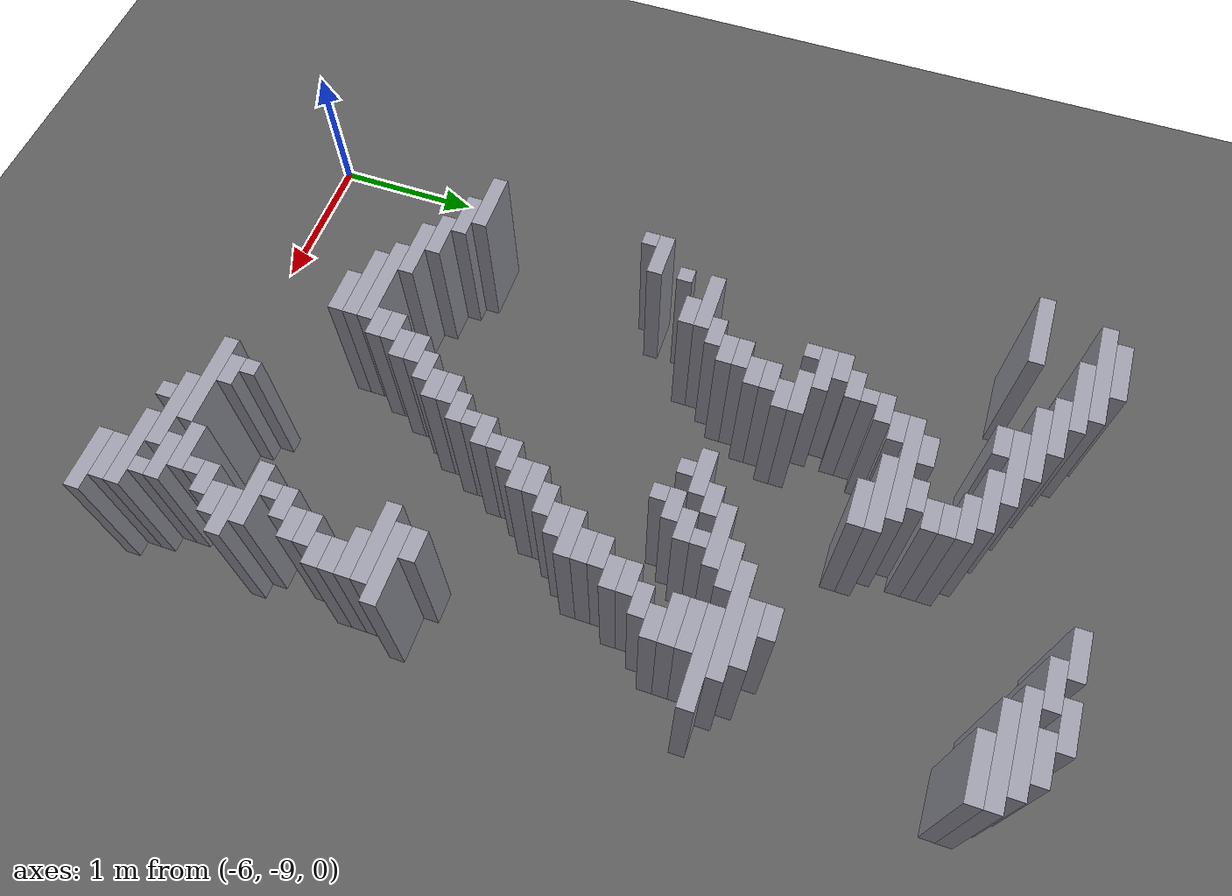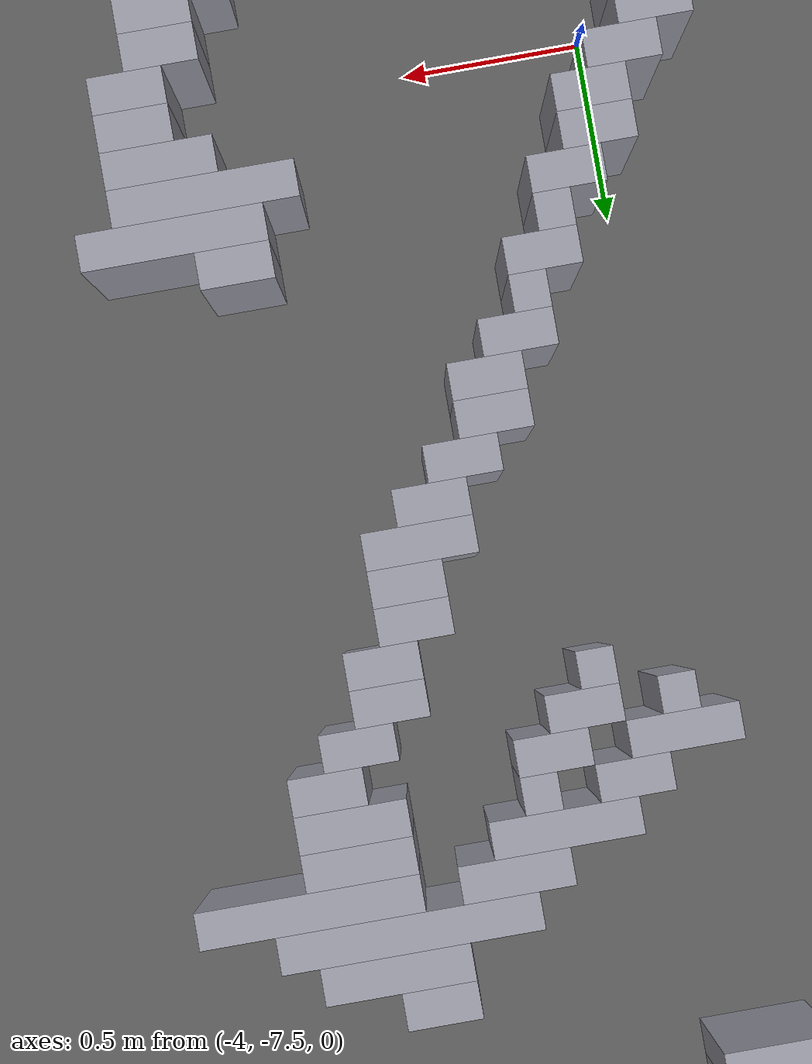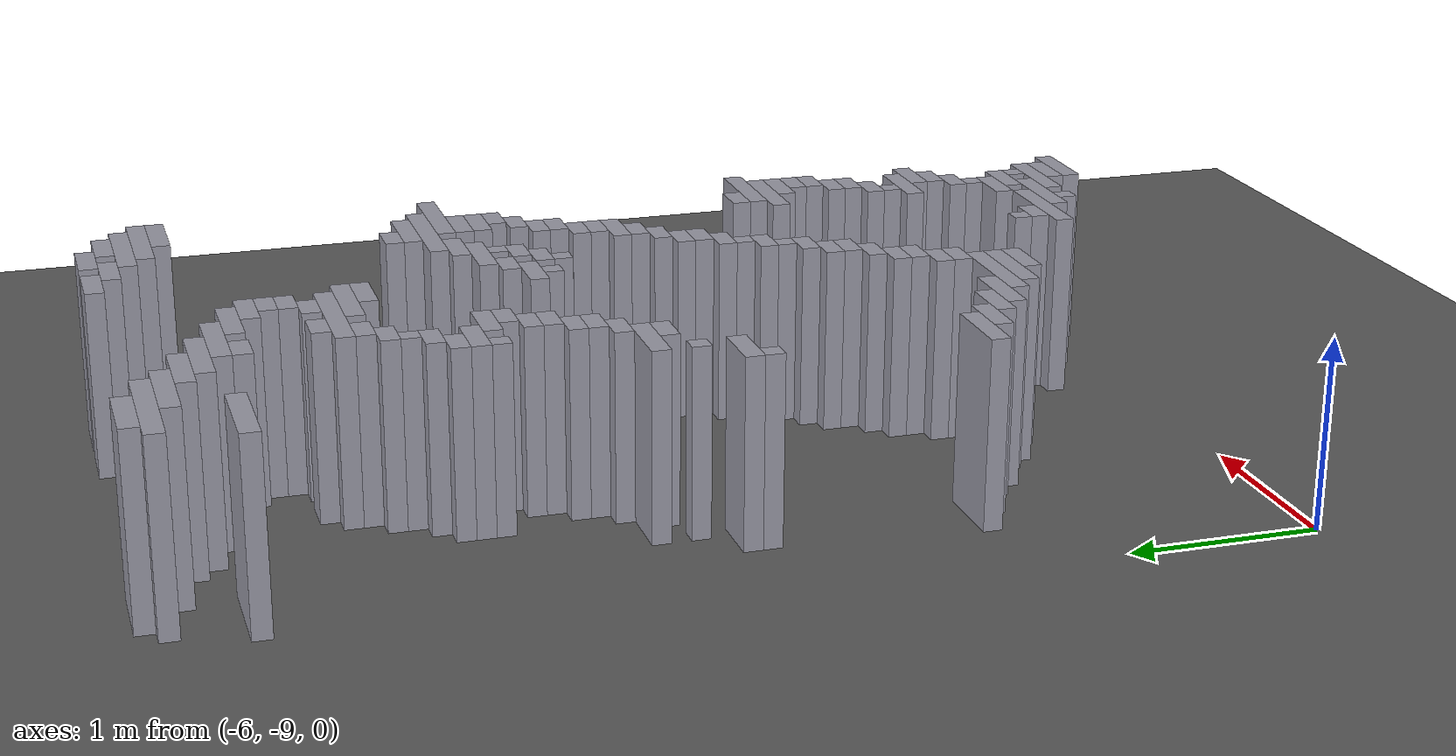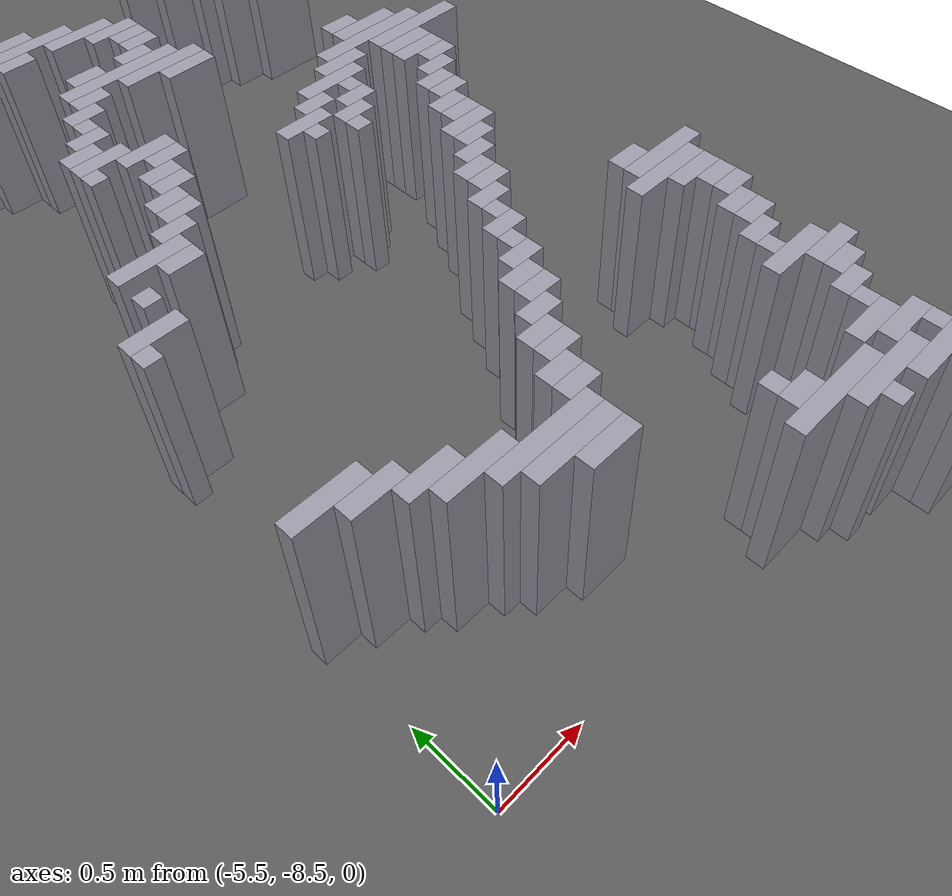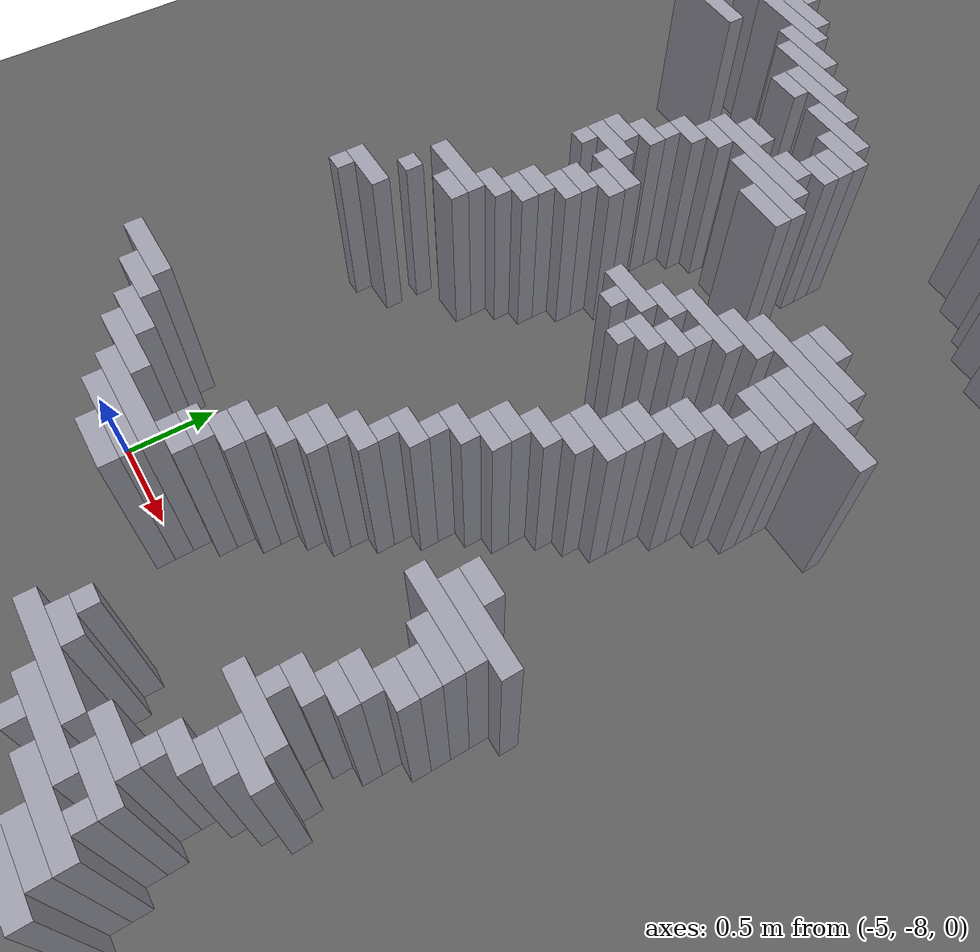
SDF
<sdf version="1.8">
 <world name="dimi">
  <model name="ground">
   <static>true</static>
   <link name="ground_link">
    <collision name="c"><geometry><plane><normal>0 0 1</normal><size>60 60</size></plane></geometry></collision>
    <visual name="v">
     <geometry><plane><normal>0 0 1</normal><size>60 60</size></plane></geometry>
     <material><ambient>0.3 0.3 0.3 1</ambient><diffuse>0.35 0.35 0.35 1</diffuse></material>
    </visual>
   </link>
  </model>
  <model name="walls">
   <static>true</static>
   <link name="wall_346">
    <pose>-5.3610 -3.3710 0.5000 0 0 0</pose>
    <collision name="c"><geometry><box><size>0.4000 0.1000 1.0000</size></box></geometry></collision>
    <visual name="v">
     <geometry><box><size>0.4000 0.1000 1.0000</size></box></geometry>
     <material><ambient>0.5 0.5 0.55 1</ambient><diffuse>0.6 0.6 0.65 1</diffuse></material>
    </visual>
   </link>
   <link name="wall_347">
    <pose>-3.5110 -3.3710 0.5000 0 0 0</pose>
    <collision name="c"><geometry><box><size>0.3000 0.1000 1.0000</size></box></geometry></collision>
    <visual name="v">
     <geometry><box><size>0.3000 0.1000 1.0000</size></box></geometry>
     <material><ambient>0.5 0.5 0.55 1</ambient><diffuse>0.6 0.6 0.65 1</diffuse></material>
    </visual>
   </link>
   <link name="wall_348">
    <pose>-3.1110 -3.3710 0.5000 0 0 0</pose>
    <collision name="c"><geometry><box><size>0.3000 0.1000 1.0000</size></box></geometry></collision>
    <visual name="v">
     <geometry><box><size>0.3000 0.1000 1.0000</size></box></geometry>
     <material><ambient>0.5 0.5 0.55 1</ambient><diffuse>0.6 0.6 0.65 1</diffuse></material>
    </visual>
   </link>
   <link name="wall_352">
    <pose>-5.3110 -3.4710 0.5000 0 0 0</pose>
    <collision name="c"><geometry><box><size>0.7000 0.1000 1.0000</size></box></geometry></collision>
    <visual name="v">
     <geometry><box><size>0.7000 0.1000 1.0000</size></box></geometry>
     <material><ambient>0.5 0.5 0.55 1</ambient><diffuse>0.6 0.6 0.65 1</diffuse></material>
    </visual>
   </link>
   <link name="wall_353">
    <pose>-3.3110 -3.4710 0.5000 0 0 0</pose>
    <collision name="c"><geometry><box><size>0.3000 0.1000 1.0000</size></box></geometry></collision>
    <visual name="v">
     <geometry><box><size>0.3000 0.1000 1.0000</size></box></geometry>
     <material><ambient>0.5 0.5 0.55 1</ambient><diffuse>0.6 0.6 0.65 1</diffuse></material>
    </visual>
   </link>
   <link name="wall_354">
    <pose>-2.9110 -3.4710 0.5000 0 0 0</pose>
    <collision name="c"><geometry><box><size>0.3000 0.1000 1.0000</size></box></geometry></collision>
    <visual name="v">
     <geometry><box><size>0.3000 0.1000 1.0000</size></box></geometry>
     <material><ambient>0.5 0.5 0.55 1</ambient><diffuse>0.6 0.6 0.65 1</diffuse></material>
    </visual>
   </link>
   <link name="wall_360">
    <pose>-5.1110 -3.5710 0.5000 0 0 0</pose>
    <collision name="c"><geometry><box><size>0.5000 0.1000 1.0000</size></box></geometry></collision>
    <visual name="v">
     <geometry><box><size>0.5000 0.1000 1.0000</size></box></geometry>
     <material><ambient>0.5 0.5 0.55 1</ambient><diffuse>0.6 0.6 0.65 1</diffuse></material>
    </visual>
   </link>
   <link name="wall_361">
    <pose>-2.9610 -3.5710 0.5000 0 0 0</pose>
    <collision name="c"><geometry><box><size>0.6000 0.1000 1.0000</size></box></geometry></collision>
    <visual name="v">
     <geometry><box><size>0.6000 0.1000 1.0000</size></box></geometry>
     <material><ambient>0.5 0.5 0.55 1</ambient><diffuse>0.6 0.6 0.65 1</diffuse></material>
    </visual>
   </link>
   <link name="wall_367">
    <pose>-4.8610 -3.6710 0.5000 0 0 0</pose>
    <collision name="c"><geometry><box><size>0.4000 0.1000 1.0000</size></box></geometry></collision>
    <visual name="v">
     <geometry><box><size>0.4000 0.1000 1.0000</size></box></geometry>
     <material><ambient>0.5 0.5 0.55 1</ambient><diffuse>0.6 0.6 0.65 1</diffuse></material>
    </visual>
   </link>
   <link name="wall_368">
    <pose>-2.8610 -3.6710 0.5000 0 0 0</pose>
    <collision name="c"><geometry><box><size>0.6000 0.1000 1.0000</size></box></geometry></collision>
    <visual name="v">
     <geometry><box><size>0.6000 0.1000 1.0000</size></box></geometry>
     <material><ambient>0.5 0.5 0.55 1</ambient><diffuse>0.6 0.6 0.65 1</diffuse></material>
    </visual>
   </link>
   <link name="wall_374">
    <pose>-4.7110 -3.7710 0.5000 0 0 0</pose>
    <collision name="c"><geometry><box><size>0.5000 0.1000 1.0000</size></box></geometry></collision>
    <visual name="v">
     <geometry><box><size>0.5000 0.1000 1.0000</size></box></geometry>
     <material><ambient>0.5 0.5 0.55 1</ambient><diffuse>0.6 0.6 0.65 1</diffuse></material>
    </visual>
   </link>
   <link name="wall_375">
    <pose>-2.7610 -3.7710 0.5000 0 0 0</pose>
    <collision name="c"><geometry><box><size>0.4000 0.1000 1.0000</size></box></geometry></collision>
    <visual name="v">
     <geometry><box><size>0.4000 0.1000 1.0000</size></box></geometry>
     <material><ambient>0.5 0.5 0.55 1</ambient><diffuse>0.6 0.6 0.65 1</diffuse></material>
    </visual>
   </link>
   <link name="wall_382">
    <pose>-5.5110 -3.8710 0.5000 0 0 0</pose>
    <collision name="c"><geometry><box><size>0.5000 0.1000 1.0000</size></box></geometry></collision>
    <visual name="v">
     <geometry><box><size>0.5000 0.1000 1.0000</size></box></geometry>
     <material><ambient>0.5 0.5 0.55 1</ambient><diffuse>0.6 0.6 0.65 1</diffuse></material>
    </visual>
   </link>
   <link name="wall_383">
    <pose>-4.5110 -3.8710 0.5000 0 0 0</pose>
    <collision name="c"><geometry><box><size>0.5000 0.1000 1.0000</size></box></geometry></collision>
    <visual name="v">
     <geometry><box><size>0.5000 0.1000 1.0000</size></box></geometry>
     <material><ambient>0.5 0.5 0.55 1</ambient><diffuse>0.6 0.6 0.65 1</diffuse></material>
    </visual>
   </link>
   <link name="wall_390">
    <pose>-4.6610 -3.9710 0.5000 0 0 0</pose>
    <collision name="c"><geometry><box><size>0.2000 0.1000 1.0000</size></box></geometry></collision>
    <visual name="v">
     <geometry><box><size>0.2000 0.1000 1.0000</size></box></geometry>
     <material><ambient>0.5 0.5 0.55 1</ambient><diffuse>0.6 0.6 0.65 1</diffuse></material>
    </visual>
   </link>
   <link name="wall_391">
    <pose>-4.2610 -3.9710 0.5000 0 0 0</pose>
    <collision name="c"><geometry><box><size>0.4000 0.1000 1.0000</size></box></geometry></collision>
    <visual name="v">
     <geometry><box><size>0.4000 0.1000 1.0000</size></box></geometry>
     <material><ambient>0.5 0.5 0.55 1</ambient><diffuse>0.6 0.6 0.65 1</diffuse></material>
    </visual>
   </link>
   <link name="wall_398">
    <pose>-4.1110 -4.0710 0.5000 0 0 0</pose>
    <collision name="c"><geometry><box><size>0.3000 0.1000 1.0000</size></box></geometry></collision>
    <visual name="v">
     <geometry><box><size>0.3000 0.1000 1.0000</size></box></geometry>
     <material><ambient>0.5 0.5 0.55 1</ambient><diffuse>0.6 0.6 0.65 1</diffuse></material>
    </visual>
   </link>
   <link name="wall_404">
    <pose>-4.0610 -4.1710 0.5000 0 0 0</pose>
    <collision name="c"><geometry><box><size>0.2000 0.1000 1.0000</size></box></geometry></collision>
    <visual name="v">
     <geometry><box><size>0.2000 0.1000 1.0000</size></box></geometry>
     <material><ambient>0.5 0.5 0.55 1</ambient><diffuse>0.6 0.6 0.65 1</diffuse></material>
    </visual>
   </link>
   <link name="wall_412">
    <pose>-4.0610 -4.2710 0.5000 0 0 0</pose>
    <collision name="c"><geometry><box><size>0.2000 0.1000 1.0000</size></box></geometry></collision>
    <visual name="v">
     <geometry><box><size>0.2000 0.1000 1.0000</size></box></geometry>
     <material><ambient>0.5 0.5 0.55 1</ambient><diffuse>0.6 0.6 0.65 1</diffuse></material>
    </visual>
   </link>
   <link name="wall_419">
    <pose>-4.4610 -4.3710 0.5000 0 0 0</pose>
    <collision name="c"><geometry><box><size>0.2000 0.1000 1.0000</size></box></geometry></collision>
    <visual name="v">
     <geometry><box><size>0.2000 0.1000 1.0000</size></box></geometry>
     <material><ambient>0.5 0.5 0.55 1</ambient><diffuse>0.6 0.6 0.65 1</diffuse></material>
    </visual>
   </link>
   <link name="wall_420">
    <pose>-4.1610 -4.3710 0.5000 0 0 0</pose>
    <collision name="c"><geometry><box><size>0.2000 0.1000 1.0000</size></box></geometry></collision>
    <visual name="v">
     <geometry><box><size>0.2000 0.1000 1.0000</size></box></geometry>
     <material><ambient>0.5 0.5 0.55 1</ambient><diffuse>0.6 0.6 0.65 1</diffuse></material>
    </visual>
   </link>
   <link name="wall_426">
    <pose>-4.3110 -4.4710 0.5000 0 0 0</pose>
    <collision name="c"><geometry><box><size>0.7000 0.1000 1.0000</size></box></geometry></collision>
    <visual name="v">
     <geometry><box><size>0.7000 0.1000 1.0000</size></box></geometry>
     <material><ambient>0.5 0.5 0.55 1</ambient><diffuse>0.6 0.6 0.65 1</diffuse></material>
    </visual>
   </link>
   <link name="wall_433">
    <pose>-4.5610 -4.5710 0.5000 0 0 0</pose>
    <collision name="c"><geometry><box><size>0.2000 0.1000 1.0000</size></box></geometry></collision>
    <visual name="v">
     <geometry><box><size>0.2000 0.1000 1.0000</size></box></geometry>
     <material><ambient>0.5 0.5 0.55 1</ambient><diffuse>0.6 0.6 0.65 1</diffuse></material>
    </visual>
   </link>
   <link name="wall_434">
    <pose>-4.1110 -4.5710 0.5000 0 0 0</pose>
    <collision name="c"><geometry><box><size>0.5000 0.1000 1.0000</size></box></geometry></collision>
    <visual name="v">
     <geometry><box><size>0.5000 0.1000 1.0000</size></box></geometry>
     <material><ambient>0.5 0.5 0.55 1</ambient><diffuse>0.6 0.6 0.65 1</diffuse></material>
    </visual>
   </link>
   <link name="wall_440">
    <pose>-4.6610 -4.6710 0.5000 0 0 0</pose>
    <collision name="c"><geometry><box><size>0.2000 0.1000 1.0000</size></box></geometry></collision>
    <visual name="v">
     <geometry><box><size>0.2000 0.1000 1.0000</size></box></geometry>
     <material><ambient>0.5 0.5 0.55 1</ambient><diffuse>0.6 0.6 0.65 1</diffuse></material>
    </visual>
   </link>
   <link name="wall_441">
    <pose>-4.0110 -4.6710 0.5000 0 0 0</pose>
    <collision name="c"><geometry><box><size>0.3000 0.1000 1.0000</size></box></geometry></collision>
    <visual name="v">
     <geometry><box><size>0.3000 0.1000 1.0000</size></box></geometry>
     <material><ambient>0.5 0.5 0.55 1</ambient><diffuse>0.6 0.6 0.65 1</diffuse></material>
    </visual>
   </link>
   <link name="wall_446">
    <pose>-4.7110 -4.7710 0.5000 0 0 0</pose>
    <collision name="c"><geometry><box><size>0.1000 0.1000 1.0000</size></box></geometry></collision>
    <visual name="v">
     <geometry><box><size>0.1000 0.1000 1.0000</size></box></geometry>
     <material><ambient>0.5 0.5 0.55 1</ambient><diffuse>0.6 0.6 0.65 1</diffuse></material>
    </visual>
   </link>
   <link name="wall_451">
    <pose>-4.7610 -4.8710 0.5000 0 0 0</pose>
    <collision name="c"><geometry><box><size>0.2000 0.1000 1.0000</size></box></geometry></collision>
    <visual name="v">
     <geometry><box><size>0.2000 0.1000 1.0000</size></box></geometry>
     <material><ambient>0.5 0.5 0.55 1</ambient><diffuse>0.6 0.6 0.65 1</diffuse></material>
    </visual>
   </link>
   <link name="wall_456">
    <pose>-4.8610 -4.9710 0.5000 0 0 0</pose>
    <collision name="c"><geometry><box><size>0.2000 0.1000 1.0000</size></box></geometry></collision>
    <visual name="v">
     <geometry><box><size>0.2000 0.1000 1.0000</size></box></geometry>
     <material><ambient>0.5 0.5 0.55 1</ambient><diffuse>0.6 0.6 0.65 1</diffuse></material>
    </visual>
   </link>
   <link name="wall_457">
    <pose>-3.1610 -4.9710 0.5000 0 0 0</pose>
    <collision name="c"><geometry><box><size>0.2000 0.1000 1.0000</size></box></geometry></collision>
    <visual name="v">
     <geometry><box><size>0.2000 0.1000 1.0000</size></box></geometry>
     <material><ambient>0.5 0.5 0.55 1</ambient><diffuse>0.6 0.6 0.65 1</diffuse></material>
    </visual>
   </link>
   <link name="wall_461">
    <pose>-4.8110 -5.0710 0.5000 0 0 0</pose>
    <collision name="c"><geometry><box><size>0.3000 0.1000 1.0000</size></box></geometry></collision>
    <visual name="v">
     <geometry><box><size>0.3000 0.1000 1.0000</size></box></geometry>
     <material><ambient>0.5 0.5 0.55 1</ambient><diffuse>0.6 0.6 0.65 1</diffuse></material>
    </visual>
   </link>
   <link name="wall_462">
    <pose>-3.0610 -5.0710 0.5000 0 0 0</pose>
    <collision name="c"><geometry><box><size>0.4000 0.1000 1.0000</size></box></geometry></collision>
    <visual name="v">
     <geometry><box><size>0.4000 0.1000 1.0000</size></box></geometry>
     <material><ambient>0.5 0.5 0.55 1</ambient><diffuse>0.6 0.6 0.65 1</diffuse></material>
    </visual>
   </link>
   <link name="wall_467">
    <pose>-4.9110 -5.1710 0.5000 0 0 0</pose>
    <collision name="c"><geometry><box><size>0.1000 0.1000 1.0000</size></box></geometry></collision>
    <visual name="v">
     <geometry><box><size>0.1000 0.1000 1.0000</size></box></geometry>
     <material><ambient>0.5 0.5 0.55 1</ambient><diffuse>0.6 0.6 0.65 1</diffuse></material>
    </visual>
   </link>
   <link name="wall_468">
    <pose>-4.6110 -5.1710 0.5000 0 0 0</pose>
    <collision name="c"><geometry><box><size>0.3000 0.1000 1.0000</size></box></geometry></collision>
    <visual name="v">
     <geometry><box><size>0.3000 0.1000 1.0000</size></box></geometry>
     <material><ambient>0.5 0.5 0.55 1</ambient><diffuse>0.6 0.6 0.65 1</diffuse></material>
    </visual>
   </link>
   <link name="wall_469">
    <pose>-3.1110 -5.1710 0.5000 0 0 0</pose>
    <collision name="c"><geometry><box><size>0.7000 0.1000 1.0000</size></box></geometry></collision>
    <visual name="v">
     <geometry><box><size>0.7000 0.1000 1.0000</size></box></geometry>
     <material><ambient>0.5 0.5 0.55 1</ambient><diffuse>0.6 0.6 0.65 1</diffuse></material>
    </visual>
   </link>
   <link name="wall_473">
    <pose>-4.5610 -5.2710 0.5000 0 0 0</pose>
    <collision name="c"><geometry><box><size>0.2000 0.1000 1.0000</size></box></geometry></collision>
    <visual name="v">
     <geometry><box><size>0.2000 0.1000 1.0000</size></box></geometry>
     <material><ambient>0.5 0.5 0.55 1</ambient><diffuse>0.6 0.6 0.65 1</diffuse></material>
    </visual>
   </link>
   <link name="wall_474">
    <pose>-3.4110 -5.2710 0.5000 0 0 0</pose>
    <collision name="c"><geometry><box><size>0.3000 0.1000 1.0000</size></box></geometry></collision>
    <visual name="v">
     <geometry><box><size>0.3000 0.1000 1.0000</size></box></geometry>
     <material><ambient>0.5 0.5 0.55 1</ambient><diffuse>0.6 0.6 0.65 1</diffuse></material>
    </visual>
   </link>
   <link name="wall_475">
    <pose>-2.8610 -5.2710 0.5000 0 0 0</pose>
    <collision name="c"><geometry><box><size>0.6000 0.1000 1.0000</size></box></geometry></collision>
    <visual name="v">
     <geometry><box><size>0.6000 0.1000 1.0000</size></box></geometry>
     <material><ambient>0.5 0.5 0.55 1</ambient><diffuse>0.6 0.6 0.65 1</diffuse></material>
    </visual>
   </link>
   <link name="wall_481">
    <pose>-4.6610 -5.3710 0.5000 0 0 0</pose>
    <collision name="c"><geometry><box><size>0.2000 0.1000 1.0000</size></box></geometry></collision>
    <visual name="v">
     <geometry><box><size>0.2000 0.1000 1.0000</size></box></geometry>
     <material><ambient>0.5 0.5 0.55 1</ambient><diffuse>0.6 0.6 0.65 1</diffuse></material>
    </visual>
   </link>
   <link name="wall_482">
    <pose>-3.5610 -5.3710 0.5000 0 0 0</pose>
    <collision name="c"><geometry><box><size>0.4000 0.1000 1.0000</size></box></geometry></collision>
    <visual name="v">
     <geometry><box><size>0.4000 0.1000 1.0000</size></box></geometry>
     <material><ambient>0.5 0.5 0.55 1</ambient><diffuse>0.6 0.6 0.65 1</diffuse></material>
    </visual>
   </link>
   <link name="wall_483">
    <pose>-3.0110 -5.3710 0.5000 0 0 0</pose>
    <collision name="c"><geometry><box><size>0.3000 0.1000 1.0000</size></box></geometry></collision>
    <visual name="v">
     <geometry><box><size>0.3000 0.1000 1.0000</size></box></geometry>
     <material><ambient>0.5 0.5 0.55 1</ambient><diffuse>0.6 0.6 0.65 1</diffuse></material>
    </visual>
   </link>
   <link name="wall_489">
    <pose>-4.6610 -5.4710 0.5000 0 0 0</pose>
    <collision name="c"><geometry><box><size>0.2000 0.1000 1.0000</size></box></geometry></collision>
    <visual name="v">
     <geometry><box><size>0.2000 0.1000 1.0000</size></box></geometry>
     <material><ambient>0.5 0.5 0.55 1</ambient><diffuse>0.6 0.6 0.65 1</diffuse></material>
    </visual>
   </link>
   <link name="wall_490">
    <pose>-3.7610 -5.4710 0.5000 0 0 0</pose>
    <collision name="c"><geometry><box><size>0.2000 0.1000 1.0000</size></box></geometry></collision>
    <visual name="v">
     <geometry><box><size>0.2000 0.1000 1.0000</size></box></geometry>
     <material><ambient>0.5 0.5 0.55 1</ambient><diffuse>0.6 0.6 0.65 1</diffuse></material>
    </visual>
   </link>
   <link name="wall_491">
    <pose>-3.5110 -5.4710 0.5000 0 0 0</pose>
    <collision name="c"><geometry><box><size>0.1000 0.1000 1.0000</size></box></geometry></collision>
    <visual name="v">
     <geometry><box><size>0.1000 0.1000 1.0000</size></box></geometry>
     <material><ambient>0.5 0.5 0.55 1</ambient><diffuse>0.6 0.6 0.65 1</diffuse></material>
    </visual>
   </link>
   <link name="wall_492">
    <pose>-3.0110 -5.4710 0.5000 0 0 0</pose>
    <collision name="c"><geometry><box><size>0.3000 0.1000 1.0000</size></box></geometry></collision>
    <visual name="v">
     <geometry><box><size>0.3000 0.1000 1.0000</size></box></geometry>
     <material><ambient>0.5 0.5 0.55 1</ambient><diffuse>0.6 0.6 0.65 1</diffuse></material>
    </visual>
   </link>
   <link name="wall_497">
    <pose>-4.7610 -5.5710 0.5000 0 0 0</pose>
    <collision name="c"><geometry><box><size>0.2000 0.1000 1.0000</size></box></geometry></collision>
    <visual name="v">
     <geometry><box><size>0.2000 0.1000 1.0000</size></box></geometry>
     <material><ambient>0.5 0.5 0.55 1</ambient><diffuse>0.6 0.6 0.65 1</diffuse></material>
    </visual>
   </link>
   <link name="wall_498">
    <pose>-3.9110 -5.5710 0.5000 0 0 0</pose>
    <collision name="c"><geometry><box><size>0.3000 0.1000 1.0000</size></box></geometry></collision>
    <visual name="v">
     <geometry><box><size>0.3000 0.1000 1.0000</size></box></geometry>
     <material><ambient>0.5 0.5 0.55 1</ambient><diffuse>0.6 0.6 0.65 1</diffuse></material>
    </visual>
   </link>
   <link name="wall_499">
    <pose>-3.5610 -5.5710 0.5000 0 0 0</pose>
    <collision name="c"><geometry><box><size>0.2000 0.1000 1.0000</size></box></geometry></collision>
    <visual name="v">
     <geometry><box><size>0.2000 0.1000 1.0000</size></box></geometry>
     <material><ambient>0.5 0.5 0.55 1</ambient><diffuse>0.6 0.6 0.65 1</diffuse></material>
    </visual>
   </link>
   <link name="wall_500">
    <pose>-2.9610 -5.5710 0.5000 0 0 0</pose>
    <collision name="c"><geometry><box><size>0.2000 0.1000 1.0000</size></box></geometry></collision>
    <visual name="v">
     <geometry><box><size>0.2000 0.1000 1.0000</size></box></geometry>
     <material><ambient>0.5 0.5 0.55 1</ambient><diffuse>0.6 0.6 0.65 1</diffuse></material>
    </visual>
   </link>
   <link name="wall_506">
    <pose>-4.7610 -5.6710 0.5000 0 0 0</pose>
    <collision name="c"><geometry><box><size>0.2000 0.1000 1.0000</size></box></geometry></collision>
    <visual name="v">
     <geometry><box><size>0.2000 0.1000 1.0000</size></box></geometry>
     <material><ambient>0.5 0.5 0.55 1</ambient><diffuse>0.6 0.6 0.65 1</diffuse></material>
    </visual>
   </link>
   <link name="wall_507">
    <pose>-3.9110 -5.6710 0.5000 0 0 0</pose>
    <collision name="c"><geometry><box><size>0.1000 0.1000 1.0000</size></box></geometry></collision>
    <visual name="v">
     <geometry><box><size>0.1000 0.1000 1.0000</size></box></geometry>
     <material><ambient>0.5 0.5 0.55 1</ambient><diffuse>0.6 0.6 0.65 1</diffuse></material>
    </visual>
   </link>
   <link name="wall_508">
    <pose>-3.6610 -5.6710 0.5000 0 0 0</pose>
    <collision name="c"><geometry><box><size>0.2000 0.1000 1.0000</size></box></geometry></collision>
    <visual name="v">
     <geometry><box><size>0.2000 0.1000 1.0000</size></box></geometry>
     <material><ambient>0.5 0.5 0.55 1</ambient><diffuse>0.6 0.6 0.65 1</diffuse></material>
    </visual>
   </link>
   <link name="wall_509">
    <pose>-3.0610 -5.6710 0.5000 0 0 0</pose>
    <collision name="c"><geometry><box><size>0.2000 0.1000 1.0000</size></box></geometry></collision>
    <visual name="v">
     <geometry><box><size>0.2000 0.1000 1.0000</size></box></geometry>
     <material><ambient>0.5 0.5 0.55 1</ambient><diffuse>0.6 0.6 0.65 1</diffuse></material>
    </visual>
   </link>
   <link name="wall_515">
    <pose>-4.8610 -5.7710 0.5000 0 0 0</pose>
    <collision name="c"><geometry><box><size>0.2000 0.1000 1.0000</size></box></geometry></collision>
    <visual name="v">
     <geometry><box><size>0.2000 0.1000 1.0000</size></box></geometry>
     <material><ambient>0.5 0.5 0.55 1</ambient><diffuse>0.6 0.6 0.65 1</diffuse></material>
    </visual>
   </link>
   <link name="wall_516">
    <pose>-3.7110 -5.7710 0.5000 0 0 0</pose>
    <collision name="c"><geometry><box><size>0.1000 0.1000 1.0000</size></box></geometry></collision>
    <visual name="v">
     <geometry><box><size>0.1000 0.1000 1.0000</size></box></geometry>
     <material><ambient>0.5 0.5 0.55 1</ambient><diffuse>0.6 0.6 0.65 1</diffuse></material>
    </visual>
   </link>
   <link name="wall_517">
    <pose>-3.1610 -5.7710 0.5000 0 0 0</pose>
    <collision name="c"><geometry><box><size>0.2000 0.1000 1.0000</size></box></geometry></collision>
    <visual name="v">
     <geometry><box><size>0.2000 0.1000 1.0000</size></box></geometry>
     <material><ambient>0.5 0.5 0.55 1</ambient><diffuse>0.6 0.6 0.65 1</diffuse></material>
    </visual>
   </link>
   <link name="wall_524">
    <pose>-5.0610 -5.8710 0.5000 0 0 0</pose>
    <collision name="c"><geometry><box><size>0.4000 0.1000 1.0000</size></box></geometry></collision>
    <visual name="v">
     <geometry><box><size>0.4000 0.1000 1.0000</size></box></geometry>
     <material><ambient>0.5 0.5 0.55 1</ambient><diffuse>0.6 0.6 0.65 1</diffuse></material>
    </visual>
   </link>
   <link name="wall_525">
    <pose>-3.1610 -5.8710 0.5000 0 0 0</pose>
    <collision name="c"><geometry><box><size>0.2000 0.1000 1.0000</size></box></geometry></collision>
    <visual name="v">
     <geometry><box><size>0.2000 0.1000 1.0000</size></box></geometry>
     <material><ambient>0.5 0.5 0.55 1</ambient><diffuse>0.6 0.6 0.65 1</diffuse></material>
    </visual>
   </link>
   <link name="wall_532">
    <pose>-4.9610 -5.9710 0.5000 0 0 0</pose>
    <collision name="c"><geometry><box><size>0.2000 0.1000 1.0000</size></box></geometry></collision>
    <visual name="v">
     <geometry><box><size>0.2000 0.1000 1.0000</size></box></geometry>
     <material><ambient>0.5 0.5 0.55 1</ambient><diffuse>0.6 0.6 0.65 1</diffuse></material>
    </visual>
   </link>
   <link name="wall_533">
    <pose>-3.2610 -5.9710 0.5000 0 0 0</pose>
    <collision name="c"><geometry><box><size>0.2000 0.1000 1.0000</size></box></geometry></collision>
    <visual name="v">
     <geometry><box><size>0.2000 0.1000 1.0000</size></box></geometry>
     <material><ambient>0.5 0.5 0.55 1</ambient><diffuse>0.6 0.6 0.65 1</diffuse></material>
    </visual>
   </link>
   <link name="wall_538">
    <pose>-5.2110 -6.0710 0.5000 0 0 0</pose>
    <collision name="c"><geometry><box><size>0.1000 0.1000 1.0000</size></box></geometry></collision>
    <visual name="v">
     <geometry><box><size>0.1000 0.1000 1.0000</size></box></geometry>
     <material><ambient>0.5 0.5 0.55 1</ambient><diffuse>0.6 0.6 0.65 1</diffuse></material>
    </visual>
   </link>
   <link name="wall_539">
    <pose>-3.2610 -6.0710 0.5000 0 0 0</pose>
    <collision name="c"><geometry><box><size>0.2000 0.1000 1.0000</size></box></geometry></collision>
    <visual name="v">
     <geometry><box><size>0.2000 0.1000 1.0000</size></box></geometry>
     <material><ambient>0.5 0.5 0.55 1</ambient><diffuse>0.6 0.6 0.65 1</diffuse></material>
    </visual>
   </link>
   <link name="wall_548">
    <pose>-3.3110 -6.1710 0.5000 0 0 0</pose>
    <collision name="c"><geometry><box><size>0.3000 0.1000 1.0000</size></box></geometry></collision>
    <visual name="v">
     <geometry><box><size>0.3000 0.1000 1.0000</size></box></geometry>
     <material><ambient>0.5 0.5 0.55 1</ambient><diffuse>0.6 0.6 0.65 1</diffuse></material>
    </visual>
   </link>
   <link name="wall_555">
    <pose>-5.3110 -6.2710 0.5000 0 0 0</pose>
    <collision name="c"><geometry><box><size>0.3000 0.1000 1.0000</size></box></geometry></collision>
    <visual name="v">
     <geometry><box><size>0.3000 0.1000 1.0000</size></box></geometry>
     <material><ambient>0.5 0.5 0.55 1</ambient><diffuse>0.6 0.6 0.65 1</diffuse></material>
    </visual>
   </link>
   <link name="wall_556">
    <pose>-3.3610 -6.2710 0.5000 0 0 0</pose>
    <collision name="c"><geometry><box><size>0.2000 0.1000 1.0000</size></box></geometry></collision>
    <visual name="v">
     <geometry><box><size>0.2000 0.1000 1.0000</size></box></geometry>
     <material><ambient>0.5 0.5 0.55 1</ambient><diffuse>0.6 0.6 0.65 1</diffuse></material>
    </visual>
   </link>
   <link name="wall_562">
    <pose>-5.4110 -6.3710 0.5000 0 0 0</pose>
    <collision name="c"><geometry><box><size>0.1000 0.1000 1.0000</size></box></geometry></collision>
    <visual name="v">
     <geometry><box><size>0.1000 0.1000 1.0000</size></box></geometry>
     <material><ambient>0.5 0.5 0.55 1</ambient><diffuse>0.6 0.6 0.65 1</diffuse></material>
    </visual>
   </link>
   <link name="wall_563">
    <pose>-3.4610 -6.3710 0.5000 0 0 0</pose>
    <collision name="c"><geometry><box><size>0.2000 0.1000 1.0000</size></box></geometry></collision>
    <visual name="v">
     <geometry><box><size>0.2000 0.1000 1.0000</size></box></geometry>
     <material><ambient>0.5 0.5 0.55 1</ambient><diffuse>0.6 0.6 0.65 1</diffuse></material>
    </visual>
   </link>
   <link name="wall_569">
    <pose>-3.5610 -6.4710 0.5000 0 0 0</pose>
    <collision name="c"><geometry><box><size>0.2000 0.1000 1.0000</size></box></geometry></collision>
    <visual name="v">
     <geometry><box><size>0.2000 0.1000 1.0000</size></box></geometry>
     <material><ambient>0.5 0.5 0.55 1</ambient><diffuse>0.6 0.6 0.65 1</diffuse></material>
    </visual>
   </link>
   <link name="wall_576">
    <pose>-3.5610 -6.5710 0.5000 0 0 0</pose>
    <collision name="c"><geometry><box><size>0.2000 0.1000 1.0000</size></box></geometry></collision>
    <visual name="v">
     <geometry><box><size>0.2000 0.1000 1.0000</size></box></geometry>
     <material><ambient>0.5 0.5 0.55 1</ambient><diffuse>0.6 0.6 0.65 1</diffuse></material>
    </visual>
   </link>
   <link name="wall_583">
    <pose>-3.6610 -6.6710 0.5000 0 0 0</pose>
    <collision name="c"><geometry><box><size>0.2000 0.1000 1.0000</size></box></geometry></collision>
    <visual name="v">
     <geometry><box><size>0.2000 0.1000 1.0000</size></box></geometry>
     <material><ambient>0.5 0.5 0.55 1</ambient><diffuse>0.6 0.6 0.65 1</diffuse></material>
    </visual>
   </link>
   <link name="wall_590">
    <pose>-3.7110 -6.7710 0.5000 0 0 0</pose>
    <collision name="c"><geometry><box><size>0.1000 0.1000 1.0000</size></box></geometry></collision>
    <visual name="v">
     <geometry><box><size>0.1000 0.1000 1.0000</size></box></geometry>
     <material><ambient>0.5 0.5 0.55 1</ambient><diffuse>0.6 0.6 0.65 1</diffuse></material>
    </visual>
   </link>
   <link name="wall_597">
    <pose>-3.7610 -6.8710 0.5000 0 0 0</pose>
    <collision name="c"><geometry><box><size>0.2000 0.1000 1.0000</size></box></geometry></collision>
    <visual name="v">
     <geometry><box><size>0.2000 0.1000 1.0000</size></box></geometry>
     <material><ambient>0.5 0.5 0.55 1</ambient><diffuse>0.6 0.6 0.65 1</diffuse></material>
    </visual>
   </link>
   <link name="wall_604">
    <pose>-3.8110 -6.9710 0.5000 0 0 0</pose>
    <collision name="c"><geometry><box><size>0.1000 0.1000 1.0000</size></box></geometry></collision>
    <visual name="v">
     <geometry><box><size>0.1000 0.1000 1.0000</size></box></geometry>
     <material><ambient>0.5 0.5 0.55 1</ambient><diffuse>0.6 0.6 0.65 1</diffuse></material>
    </visual>
   </link>
   <link name="wall_605">
    <pose>-2.9610 -6.9710 0.5000 0 0 0</pose>
    <collision name="c"><geometry><box><size>0.2000 0.1000 1.0000</size></box></geometry></collision>
    <visual name="v">
     <geometry><box><size>0.2000 0.1000 1.0000</size></box></geometry>
     <material><ambient>0.5 0.5 0.55 1</ambient><diffuse>0.6 0.6 0.65 1</diffuse></material>
    </visual>
   </link>
   <link name="wall_610">
    <pose>-3.8610 -7.0710 0.5000 0 0 0</pose>
    <collision name="c"><geometry><box><size>0.2000 0.1000 1.0000</size></box></geometry></collision>
    <visual name="v">
     <geometry><box><size>0.2000 0.1000 1.0000</size></box></geometry>
     <material><ambient>0.5 0.5 0.55 1</ambient><diffuse>0.6 0.6 0.65 1</diffuse></material>
    </visual>
   </link>
   <link name="wall_611">
    <pose>-2.8110 -7.0710 0.5000 0 0 0</pose>
    <collision name="c"><geometry><box><size>0.5000 0.1000 1.0000</size></box></geometry></collision>
    <visual name="v">
     <geometry><box><size>0.5000 0.1000 1.0000</size></box></geometry>
     <material><ambient>0.5 0.5 0.55 1</ambient><diffuse>0.6 0.6 0.65 1</diffuse></material>
    </visual>
   </link>
   <link name="wall_615">
    <pose>-3.9610 -7.1710 0.5000 0 0 0</pose>
    <collision name="c"><geometry><box><size>0.2000 0.1000 1.0000</size></box></geometry></collision>
    <visual name="v">
     <geometry><box><size>0.2000 0.1000 1.0000</size></box></geometry>
     <material><ambient>0.5 0.5 0.55 1</ambient><diffuse>0.6 0.6 0.65 1</diffuse></material>
    </visual>
   </link>
   <link name="wall_616">
    <pose>-2.9110 -7.1710 0.5000 0 0 0</pose>
    <collision name="c"><geometry><box><size>0.5000 0.1000 1.0000</size></box></geometry></collision>
    <visual name="v">
     <geometry><box><size>0.5000 0.1000 1.0000</size></box></geometry>
     <material><ambient>0.5 0.5 0.55 1</ambient><diffuse>0.6 0.6 0.65 1</diffuse></material>
    </visual>
   </link>
   <link name="wall_621">
    <pose>-3.9610 -7.2710 0.5000 0 0 0</pose>
    <collision name="c"><geometry><box><size>0.2000 0.1000 1.0000</size></box></geometry></collision>
    <visual name="v">
     <geometry><box><size>0.2000 0.1000 1.0000</size></box></geometry>
     <material><ambient>0.5 0.5 0.55 1</ambient><diffuse>0.6 0.6 0.65 1</diffuse></material>
    </visual>
   </link>
   <link name="wall_622">
    <pose>-2.8110 -7.2710 0.5000 0 0 0</pose>
    <collision name="c"><geometry><box><size>0.3000 0.1000 1.0000</size></box></geometry></collision>
    <visual name="v">
     <geometry><box><size>0.3000 0.1000 1.0000</size></box></geometry>
     <material><ambient>0.5 0.5 0.55 1</ambient><diffuse>0.6 0.6 0.65 1</diffuse></material>
    </visual>
   </link>
   <link name="wall_625">
    <pose>-4.0610 -7.3710 0.5000 0 0 0</pose>
    <collision name="c"><geometry><box><size>0.2000 0.1000 1.0000</size></box></geometry></collision>
    <visual name="v">
     <geometry><box><size>0.2000 0.1000 1.0000</size></box></geometry>
     <material><ambient>0.5 0.5 0.55 1</ambient><diffuse>0.6 0.6 0.65 1</diffuse></material>
    </visual>
   </link>
   <link name="wall_626">
    <pose>-2.7610 -7.3710 0.5000 0 0 0</pose>
    <collision name="c"><geometry><box><size>0.2000 0.1000 1.0000</size></box></geometry></collision>
    <visual name="v">
     <geometry><box><size>0.2000 0.1000 1.0000</size></box></geometry>
     <material><ambient>0.5 0.5 0.55 1</ambient><diffuse>0.6 0.6 0.65 1</diffuse></material>
    </visual>
   </link>
   <link name="wall_628">
    <pose>-5.3610 -7.4710 0.5000 0 0 0</pose>
    <collision name="c"><geometry><box><size>0.4000 0.1000 1.0000</size></box></geometry></collision>
    <visual name="v">
     <geometry><box><size>0.4000 0.1000 1.0000</size></box></geometry>
     <material><ambient>0.5 0.5 0.55 1</ambient><diffuse>0.6 0.6 0.65 1</diffuse></material>
    </visual>
   </link>
   <link name="wall_629">
    <pose>-4.1610 -7.4710 0.5000 0 0 0</pose>
    <collision name="c"><geometry><box><size>0.2000 0.1000 1.0000</size></box></geometry></collision>
    <visual name="v">
     <geometry><box><size>0.2000 0.1000 1.0000</size></box></geometry>
     <material><ambient>0.5 0.5 0.55 1</ambient><diffuse>0.6 0.6 0.65 1</diffuse></material>
    </visual>
   </link>
   <link name="wall_630">
    <pose>-2.7610 -7.4710 0.5000 0 0 0</pose>
    <collision name="c"><geometry><box><size>0.2000 0.1000 1.0000</size></box></geometry></collision>
    <visual name="v">
     <geometry><box><size>0.2000 0.1000 1.0000</size></box></geometry>
     <material><ambient>0.5 0.5 0.55 1</ambient><diffuse>0.6 0.6 0.65 1</diffuse></material>
    </visual>
   </link>
   <link name="wall_632">
    <pose>-5.2110 -7.5710 0.5000 0 0 0</pose>
    <collision name="c"><geometry><box><size>0.3000 0.1000 1.0000</size></box></geometry></collision>
    <visual name="v">
     <geometry><box><size>0.3000 0.1000 1.0000</size></box></geometry>
     <material><ambient>0.5 0.5 0.55 1</ambient><diffuse>0.6 0.6 0.65 1</diffuse></material>
    </visual>
   </link>
   <link name="wall_633">
    <pose>-4.1610 -7.5710 0.5000 0 0 0</pose>
    <collision name="c"><geometry><box><size>0.2000 0.1000 1.0000</size></box></geometry></collision>
    <visual name="v">
     <geometry><box><size>0.2000 0.1000 1.0000</size></box></geometry>
     <material><ambient>0.5 0.5 0.55 1</ambient><diffuse>0.6 0.6 0.65 1</diffuse></material>
    </visual>
   </link>
   <link name="wall_634">
    <pose>-2.8610 -7.5710 0.5000 0 0 0</pose>
    <collision name="c"><geometry><box><size>0.2000 0.1000 1.0000</size></box></geometry></collision>
    <visual name="v">
     <geometry><box><size>0.2000 0.1000 1.0000</size></box></geometry>
     <material><ambient>0.5 0.5 0.55 1</ambient><diffuse>0.6 0.6 0.65 1</diffuse></material>
    </visual>
   </link>
   <link name="wall_636">
    <pose>-5.0110 -7.6710 0.5000 0 0 0</pose>
    <collision name="c"><geometry><box><size>0.3000 0.1000 1.0000</size></box></geometry></collision>
    <visual name="v">
     <geometry><box><size>0.3000 0.1000 1.0000</size></box></geometry>
     <material><ambient>0.5 0.5 0.55 1</ambient><diffuse>0.6 0.6 0.65 1</diffuse></material>
    </visual>
   </link>
   <link name="wall_637">
    <pose>-4.2610 -7.6710 0.5000 0 0 0</pose>
    <collision name="c"><geometry><box><size>0.2000 0.1000 1.0000</size></box></geometry></collision>
    <visual name="v">
     <geometry><box><size>0.2000 0.1000 1.0000</size></box></geometry>
     <material><ambient>0.5 0.5 0.55 1</ambient><diffuse>0.6 0.6 0.65 1</diffuse></material>
    </visual>
   </link>
   <link name="wall_638">
    <pose>-2.8610 -7.6710 0.5000 0 0 0</pose>
    <collision name="c"><geometry><box><size>0.2000 0.1000 1.0000</size></box></geometry></collision>
    <visual name="v">
     <geometry><box><size>0.2000 0.1000 1.0000</size></box></geometry>
     <material><ambient>0.5 0.5 0.55 1</ambient><diffuse>0.6 0.6 0.65 1</diffuse></material>
    </visual>
   </link>
   <link name="wall_640">
    <pose>-4.8610 -7.7710 0.5000 0 0 0</pose>
    <collision name="c"><geometry><box><size>0.4000 0.1000 1.0000</size></box></geometry></collision>
    <visual name="v">
     <geometry><box><size>0.4000 0.1000 1.0000</size></box></geometry>
     <material><ambient>0.5 0.5 0.55 1</ambient><diffuse>0.6 0.6 0.65 1</diffuse></material>
    </visual>
   </link>
   <link name="wall_641">
    <pose>-4.2610 -7.7710 0.5000 0 0 0</pose>
    <collision name="c"><geometry><box><size>0.2000 0.1000 1.0000</size></box></geometry></collision>
    <visual name="v">
     <geometry><box><size>0.2000 0.1000 1.0000</size></box></geometry>
     <material><ambient>0.5 0.5 0.55 1</ambient><diffuse>0.6 0.6 0.65 1</diffuse></material>
    </visual>
   </link>
   <link name="wall_642">
    <pose>-2.9610 -7.7710 0.5000 0 0 0</pose>
    <collision name="c"><geometry><box><size>0.2000 0.1000 1.0000</size></box></geometry></collision>
    <visual name="v">
     <geometry><box><size>0.2000 0.1000 1.0000</size></box></geometry>
     <material><ambient>0.5 0.5 0.55 1</ambient><diffuse>0.6 0.6 0.65 1</diffuse></material>
    </visual>
   </link>
   <link name="wall_644">
    <pose>-4.5610 -7.8710 0.5000 0 0 0</pose>
    <collision name="c"><geometry><box><size>0.6000 0.1000 1.0000</size></box></geometry></collision>
    <visual name="v">
     <geometry><box><size>0.6000 0.1000 1.0000</size></box></geometry>
     <material><ambient>0.5 0.5 0.55 1</ambient><diffuse>0.6 0.6 0.65 1</diffuse></material>
    </visual>
   </link>
   <link name="wall_645">
    <pose>-3.0110 -7.8710 0.5000 0 0 0</pose>
    <collision name="c"><geometry><box><size>0.1000 0.1000 1.0000</size></box></geometry></collision>
    <visual name="v">
     <geometry><box><size>0.1000 0.1000 1.0000</size></box></geometry>
     <material><ambient>0.5 0.5 0.55 1</ambient><diffuse>0.6 0.6 0.65 1</diffuse></material>
    </visual>
   </link>
   <link name="wall_647">
    <pose>-4.5110 -7.9710 0.5000 0 0 0</pose>
    <collision name="c"><geometry><box><size>0.5000 0.1000 1.0000</size></box></geometry></collision>
    <visual name="v">
     <geometry><box><size>0.5000 0.1000 1.0000</size></box></geometry>
     <material><ambient>0.5 0.5 0.55 1</ambient><diffuse>0.6 0.6 0.65 1</diffuse></material>
    </visual>
   </link>
   <link name="wall_648">
    <pose>-2.9610 -7.9710 0.5000 0 0 0</pose>
    <collision name="c"><geometry><box><size>0.4000 0.1000 1.0000</size></box></geometry></collision>
    <visual name="v">
     <geometry><box><size>0.4000 0.1000 1.0000</size></box></geometry>
     <material><ambient>0.5 0.5 0.55 1</ambient><diffuse>0.6 0.6 0.65 1</diffuse></material>
    </visual>
   </link>
   <link name="wall_650">
    <pose>-4.4110 -8.0710 0.5000 0 0 0</pose>
    <collision name="c"><geometry><box><size>0.3000 0.1000 1.0000</size></box></geometry></collision>
    <visual name="v">
     <geometry><box><size>0.3000 0.1000 1.0000</size></box></geometry>
     <material><ambient>0.5 0.5 0.55 1</ambient><diffuse>0.6 0.6 0.65 1</diffuse></material>
    </visual>
   </link>
   <link name="wall_651">
    <pose>-2.8110 -8.0710 0.5000 0 0 0</pose>
    <collision name="c"><geometry><box><size>0.3000 0.1000 1.0000</size></box></geometry></collision>
    <visual name="v">
     <geometry><box><size>0.3000 0.1000 1.0000</size></box></geometry>
     <material><ambient>0.5 0.5 0.55 1</ambient><diffuse>0.6 0.6 0.65 1</diffuse></material>
    </visual>
   </link>
   <link name="wall_653">
    <pose>-2.8610 -8.1710 0.5000 0 0 0</pose>
    <collision name="c"><geometry><box><size>0.2000 0.1000 1.0000</size></box></geometry></collision>
    <visual name="v">
     <geometry><box><size>0.2000 0.1000 1.0000</size></box></geometry>
     <material><ambient>0.5 0.5 0.55 1</ambient><diffuse>0.6 0.6 0.65 1</diffuse></material>
    </visual>
   </link>
   <link name="wall_655">
    <pose>-2.9610 -8.2710 0.5000 0 0 0</pose>
    <collision name="c"><geometry><box><size>0.2000 0.1000 1.0000</size></box></geometry></collision>
    <visual name="v">
     <geometry><box><size>0.2000 0.1000 1.0000</size></box></geometry>
     <material><ambient>0.5 0.5 0.55 1</ambient><diffuse>0.6 0.6 0.65 1</diffuse></material>
    </visual>
   </link>
   <link name="wall_657">
    <pose>-3.7110 -8.3710 0.5000 0 0 0</pose>
    <collision name="c"><geometry><box><size>0.1000 0.1000 1.0000</size></box></geometry></collision>
    <visual name="v">
     <geometry><box><size>0.1000 0.1000 1.0000</size></box></geometry>
     <material><ambient>0.5 0.5 0.55 1</ambient><diffuse>0.6 0.6 0.65 1</diffuse></material>
    </visual>
   </link>
   <link name="wall_658">
    <pose>-3.0110 -8.3710 0.5000 0 0 0</pose>
    <collision name="c"><geometry><box><size>0.1000 0.1000 1.0000</size></box></geometry></collision>
    <visual name="v">
     <geometry><box><size>0.1000 0.1000 1.0000</size></box></geometry>
     <material><ambient>0.5 0.5 0.55 1</ambient><diffuse>0.6 0.6 0.65 1</diffuse></material>
    </visual>
   </link>
   <link name="wall_660">
    <pose>-3.6610 -8.4710 0.5000 0 0 0</pose>
    <collision name="c"><geometry><box><size>0.2000 0.1000 1.0000</size></box></geometry></collision>
    <visual name="v">
     <geometry><box><size>0.2000 0.1000 1.0000</size></box></geometry>
     <material><ambient>0.5 0.5 0.55 1</ambient><diffuse>0.6 0.6 0.65 1</diffuse></material>
    </visual>
   </link>
   <link name="wall_661">
    <pose>-3.1110 -8.4710 0.5000 0 0 0</pose>
    <collision name="c"><geometry><box><size>0.3000 0.1000 1.0000</size></box></geometry></collision>
    <visual name="v">
     <geometry><box><size>0.3000 0.1000 1.0000</size></box></geometry>
     <material><ambient>0.5 0.5 0.55 1</ambient><diffuse>0.6 0.6 0.65 1</diffuse></material>
    </visual>
   </link>
   <link name="wall_664">
    <pose>-3.5610 -8.5710 0.5000 0 0 0</pose>
    <collision name="c"><geometry><box><size>0.6000 0.1000 1.0000</size></box></geometry></collision>
    <visual name="v">
     <geometry><box><size>0.6000 0.1000 1.0000</size></box></geometry>
     <material><ambient>0.5 0.5 0.55 1</ambient><diffuse>0.6 0.6 0.65 1</diffuse></material>
    </visual>
   </link>
   <link name="wall_665">
    <pose>-3.0110 -8.5710 0.5000 0 0 0</pose>
    <collision name="c"><geometry><box><size>0.3000 0.1000 1.0000</size></box></geometry></collision>
    <visual name="v">
     <geometry><box><size>0.3000 0.1000 1.0000</size></box></geometry>
     <material><ambient>0.5 0.5 0.55 1</ambient><diffuse>0.6 0.6 0.65 1</diffuse></material>
    </visual>
   </link>
   <link name="wall_668">
    <pose>-3.3110 -8.6710 0.5000 0 0 0</pose>
    <collision name="c"><geometry><box><size>0.5000 0.1000 1.0000</size></box></geometry></collision>
    <visual name="v">
     <geometry><box><size>0.5000 0.1000 1.0000</size></box></geometry>
     <material><ambient>0.5 0.5 0.55 1</ambient><diffuse>0.6 0.6 0.65 1</diffuse></material>
    </visual>
   </link>
   <link name="wall_669">
    <pose>-2.9110 -8.6710 0.5000 0 0 0</pose>
    <collision name="c"><geometry><box><size>0.1000 0.1000 1.0000</size></box></geometry></collision>
    <visual name="v">
     <geometry><box><size>0.1000 0.1000 1.0000</size></box></geometry>
     <material><ambient>0.5 0.5 0.55 1</ambient><diffuse>0.6 0.6 0.65 1</diffuse></material>
    </visual>
   </link>
   <link name="wall_672">
    <pose>-3.4110 -8.7710 0.5000 0 0 0</pose>
    <collision name="c"><geometry><box><size>0.1000 0.1000 1.0000</size></box></geometry></collision>
    <visual name="v">
     <geometry><box><size>0.1000 0.1000 1.0000</size></box></geometry>
     <material><ambient>0.5 0.5 0.55 1</ambient><diffuse>0.6 0.6 0.65 1</diffuse></material>
    </visual>
   </link>
   <link name="wall_673">
    <pose>-3.0110 -8.7710 0.5000 0 0 0</pose>
    <collision name="c"><geometry><box><size>0.5000 0.1000 1.0000</size></box></geometry></collision>
    <visual name="v">
     <geometry><box><size>0.5000 0.1000 1.0000</size></box></geometry>
     <material><ambient>0.5 0.5 0.55 1</ambient><diffuse>0.6 0.6 0.65 1</diffuse></material>
    </visual>
   </link>
   <link name="wall_675">
    <pose>-2.9110 -8.8710 0.5000 0 0 0</pose>
    <collision name="c"><geometry><box><size>0.3000 0.1000 1.0000</size></box></geometry></collision>
    <visual name="v">
     <geometry><box><size>0.3000 0.1000 1.0000</size></box></geometry>
     <material><ambient>0.5 0.5 0.55 1</ambient><diffuse>0.6 0.6 0.65 1</diffuse></material>
    </visual>
   </link>
   <link name="wall_677">
    <pose>-2.8610 -8.9710 0.5000 0 0 0</pose>
    <collision name="c"><geometry><box><size>0.4000 0.1000 1.0000</size></box></geometry></collision>
    <visual name="v">
     <geometry><box><size>0.4000 0.1000 1.0000</size></box></geometry>
     <material><ambient>0.5 0.5 0.55 1</ambient><diffuse>0.6 0.6 0.65 1</diffuse></material>
    </visual>
   </link>
  </model>
 </world>
</sdf>
